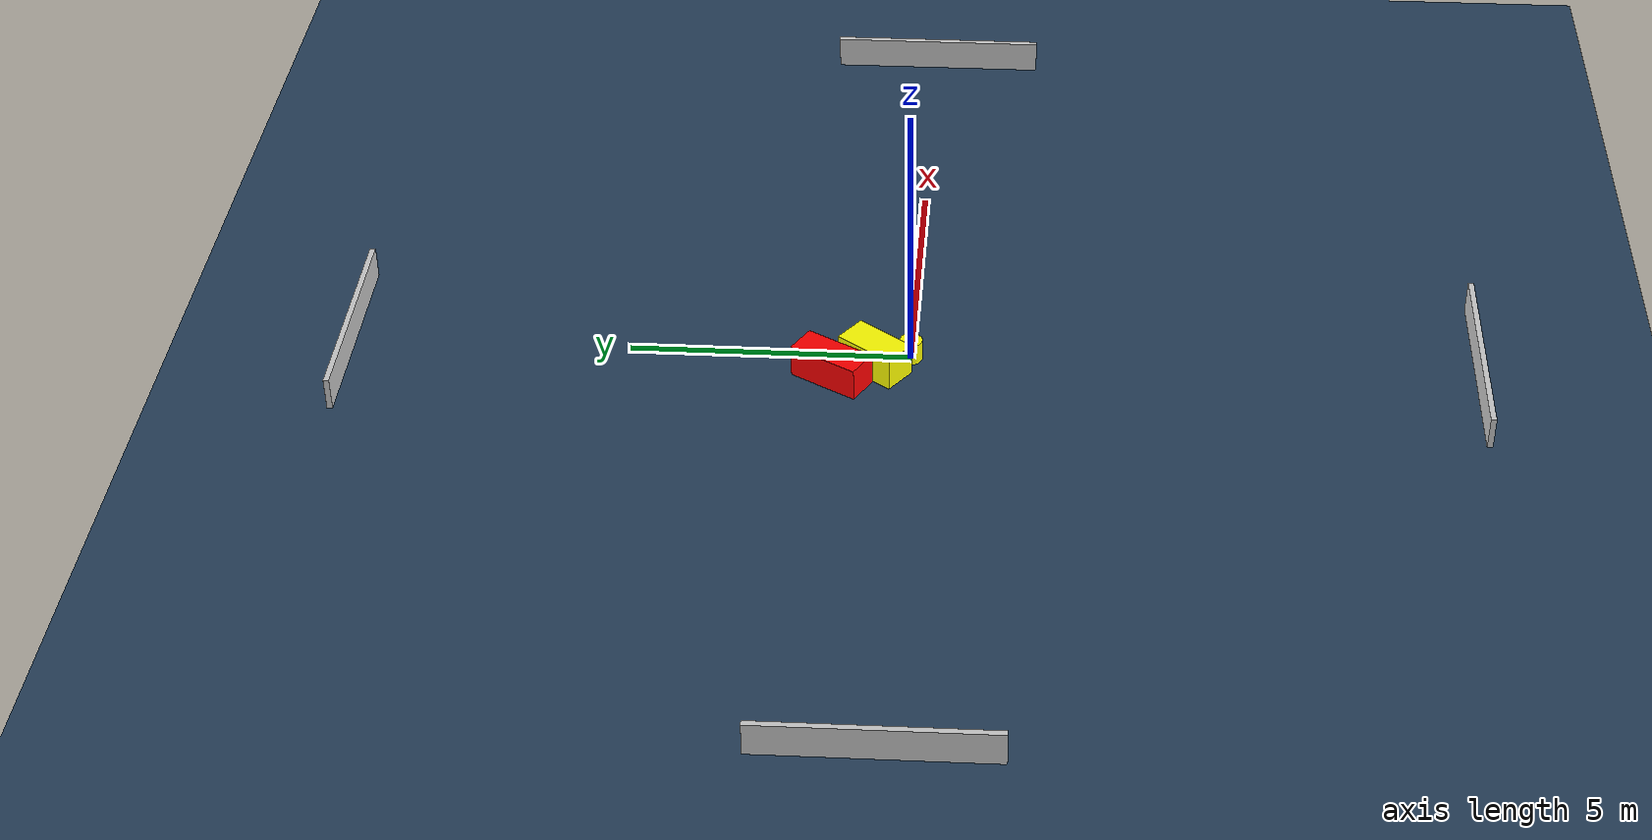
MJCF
<?xml version="1.0" ?>
<mujoco model="generated_environment">
  <option timestep="0.01" integrator="RK4" cone="elliptic"/>
  <default>
    <geom density="1"/>
  </default>
  <asset>
    <texture builtin="gradient" height="3072" name="skybox" rgb1="0.3 0.5 0.7" rgb2="0 0 0" type="skybox" width="512"/>
    <texture builtin="checker" height="300" name="groundplane" rgb1="0.2 0.3 0.4" rgb2="0.1 0.2 0.3" type="2d" width="300"/>
    <material name="groundplane" reflectance="0.2" texrepeat="5 5" texture="groundplane"/>
  </asset>
  <worldbody>
    <light dir="0 0 -1" directional="true" pos="0 0 1.5"/>
    <geom condim="3" friction="0.5 0.005 0.001" material="groundplane" name="floor" pos="0 0 0" size="0 0 0.05" type="plane"/>
    <body name="walls">
      <geom name="wall_1" condim="4" pos="-10.0 0.0 0.3" rgba="0.800000011920929 0.800000011920929 0.800000011920929 1.0" size="0.05 2.0 0.3" type="box"/>
      <geom name="wall_2" condim="4" pos="10.0 0.0 0.3" rgba="0.800000011920929 0.800000011920929 0.800000011920929 1.0" size="0.05 2.0 0.3" type="box"/>
      <geom name="wall_3" condim="4" pos="0.0 -10.0 0.3" rgba="0.800000011920929 0.800000011920929 0.800000011920929 1.0" size="2.0 0.05 0.3" type="box"/>
      <geom name="wall_4" condim="4" pos="0.0 10.0 0.3" rgba="0.800000011920929 0.800000011920929 0.800000011920929 1.0" size="2.0 0.05 0.3" type="box"/>
    </body>
    <body name="robot">
      <joint name="joint_x" type="slide" pos="0 0 0" axis="1 0 0"/>
      <joint name="joint_y" type="slide" pos="0 0 0" axis="0 1 0"/>
      <geom name="robot" type="cylinder" pos="0.0 0.0 0.2" size="0.2 0.2 0.0" mass="5.0" friction="1.0 0.005 0.0001" condim="4" rgba="1.0 1.0 0.0 1.0"/>
    </body>
    <body name="obstacle_1_movable">
      <geom name="obstacle_1_movable" condim="4" pos="-0.33269211839514456 0.6210930490939226 0.3" euler="0 0 233.32037906492317" friction="0.0 0.005 0.001" rgba="1.0 1.0 0.0 1.0" size="0.5831023612310626 0.31034324046958267 0.3" type="box" mass="0.1"/>
      <joint type="free"/>
    </body>
    <body name="obstacle_2_static">
      <geom name="obstacle_2_static" condim="4" pos="-0.6718684360369853 1.3615466733833632 0.3" euler="0 0 239.90348475581152" friction="0.0 0.005 0.001" rgba="1.0 0.0 0.0 1.0" size="0.6622751995316891 0.29071278884906443 0.3" type="box"/>
    </body>
  </worldbody>
  <actuator>
    <motor name="actuator_x" joint="joint_x" gear="1" ctrlrange="-1 1"/>
    <motor name="actuator_y" joint="joint_y" gear="1" ctrlrange="-1 1"/>
  </actuator>
</mujoco>
